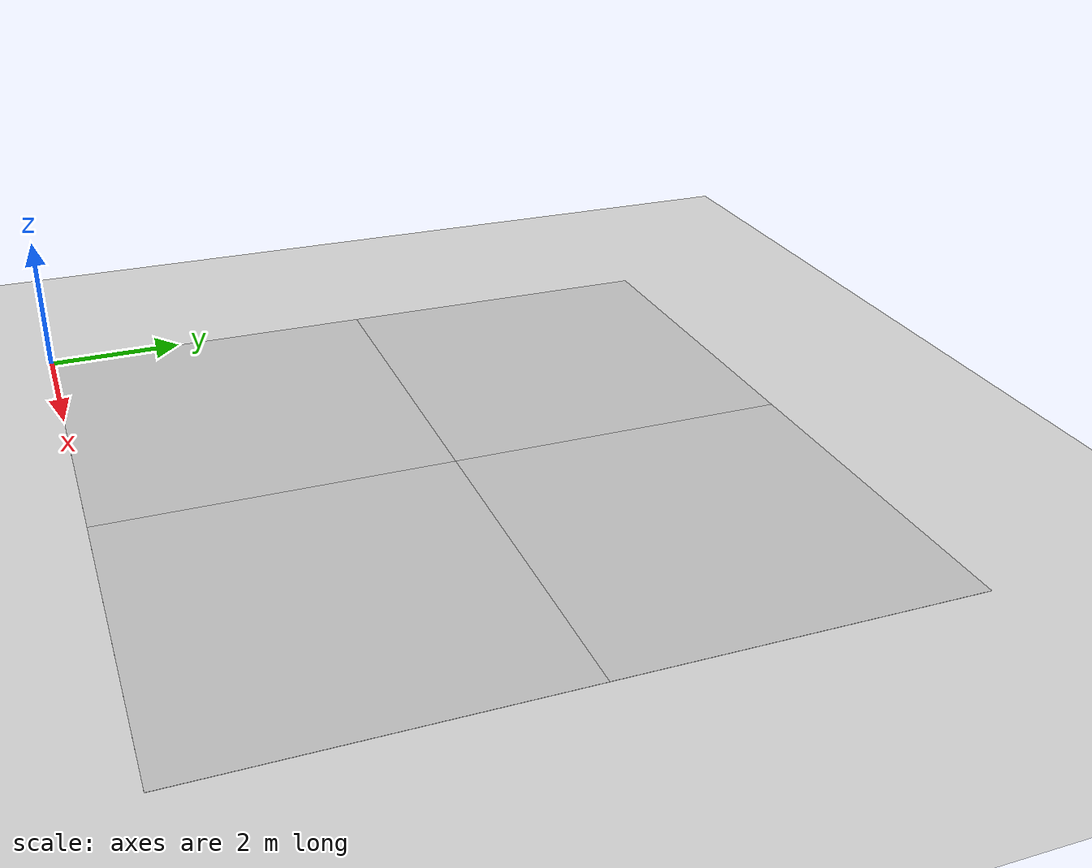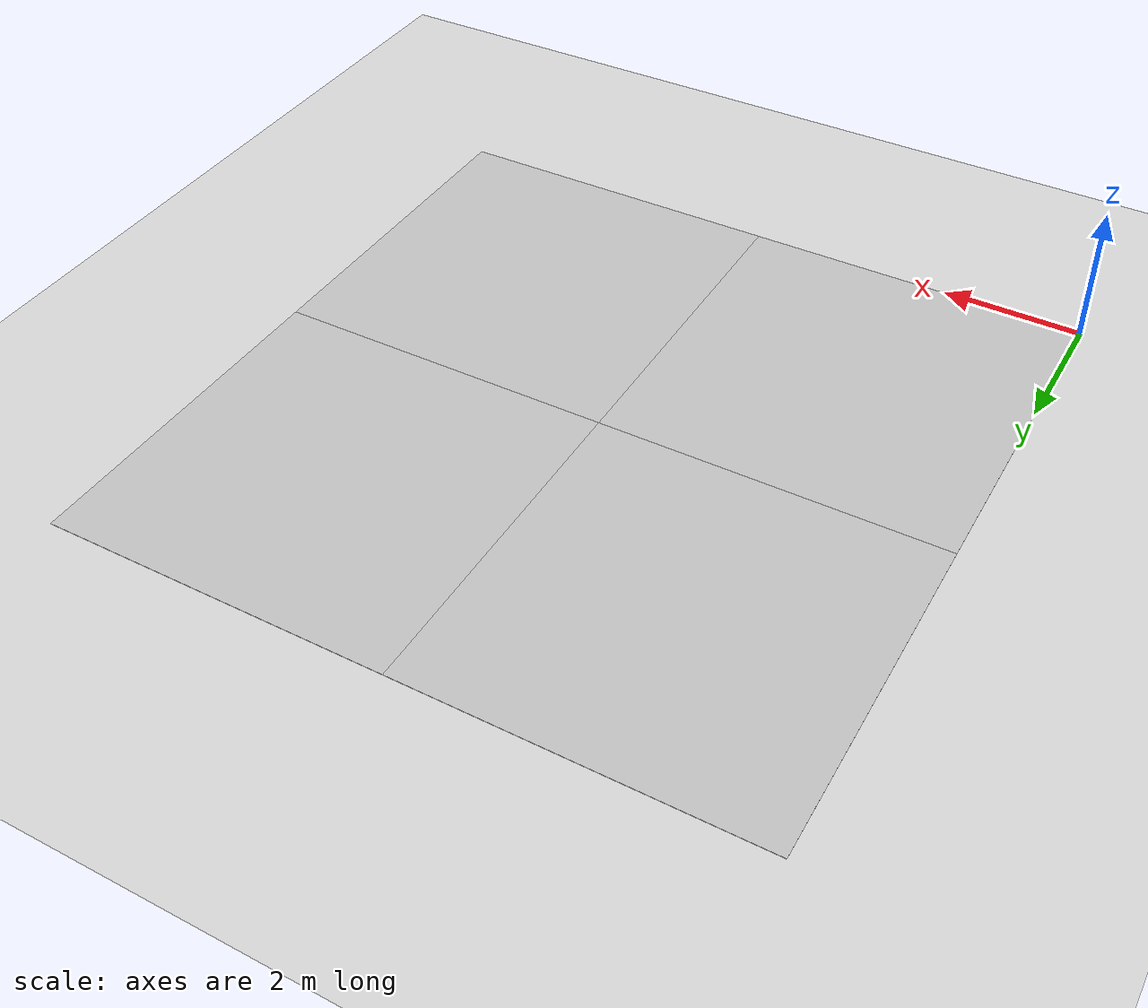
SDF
<sdf version="1.6">
 <world name="default">
  <include><uri>model://sun</uri></include>
  <include><uri>model://ground_plane</uri></include>
  <include><uri>model://terrain</uri></include>
 </world>
</sdf>

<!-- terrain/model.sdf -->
<sdf version="1.6">
  <model name="terrain">
    <static>true</static>
    <link name="link">
      <visual name="visual">
      	<pose> 2.5 7.5 0 0 0 0 </pose>
        <cast_shadows>false</cast_shadows>
        <geometry>
          <plane>
            <normal>0 0 1</normal>
            <size>5 5 </size>
          </plane>
        </geometry>
        <material>
          <script>
            <uri>model://terrain/materials/scripts</uri>
            <uri>model://terrain/materials/textures</uri>
            <name>terrain/img</name>
          </script>
        </material>
      </visual>
      <visual name="visual1">
      	<pose> 2.5 2.5 0 0 0 0 </pose>
        <cast_shadows>false</cast_shadows>
        <geometry>
          <plane>
            <normal>0 0 1</normal>
            <size>5 5 </size>
          </plane>
        </geometry>
        <material>
          <script>
            <uri>model://terrain/materials/scripts</uri>
            <uri>model://terrain/materials/textures</uri>
            <name>terrain/img</name>
          </script>
        </material>
      </visual>
      <visual name="visual2">
      	<pose> 7.5 7.5 0 0 0 0 </pose>
        <cast_shadows>false</cast_shadows>
        <geometry>
          <plane>
            <normal>0 0 1</normal>
            <size>5 5 </size>
          </plane>
        </geometry>
        <material>
          <script>
            <uri>model://terrain/materials/scripts</uri>
            <uri>model://terrain/materials/textures</uri>
            <name>terrain/img</name>
          </script>
        </material>
      </visual>
      <visual name="visual3">
      	<pose> 7.5 2.5 0 0 0 0 </pose>
        <cast_shadows>false</cast_shadows>
        <geometry>
          <plane>
            <normal>0 0 1</normal>
            <size>5 5 </size>
          </plane>
        </geometry>
        <material>
          <script>
            <uri>model://terrain/materials/scripts</uri>
            <uri>model://terrain/materials/textures</uri>
            <name>terrain/img</name>
          </script>
        </material>
      </visual>
    </link>
  </model>
</sdf>
